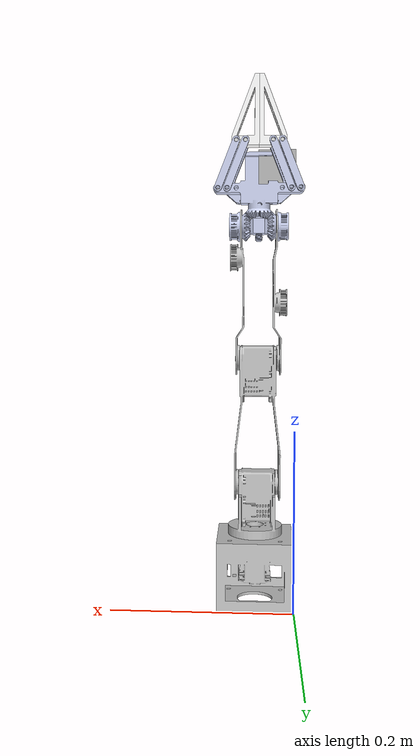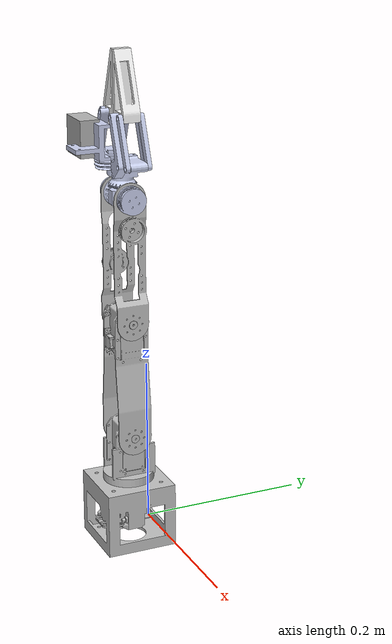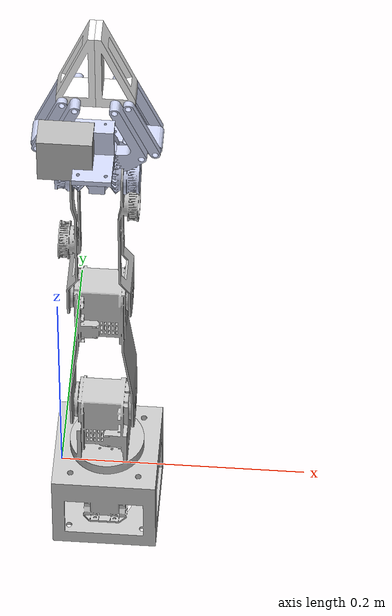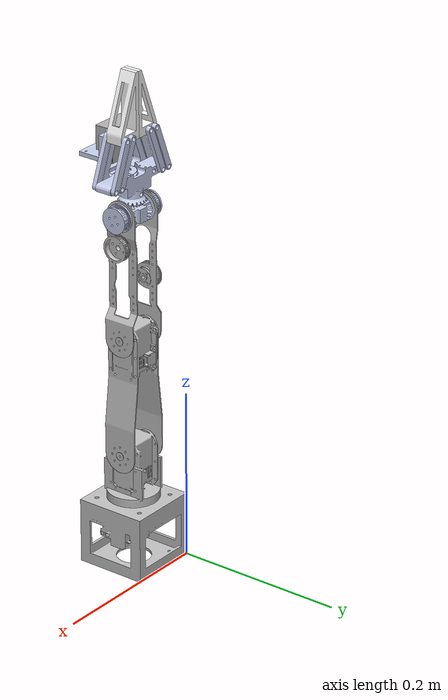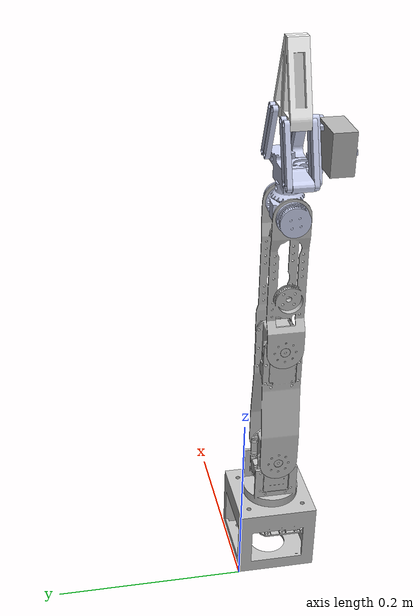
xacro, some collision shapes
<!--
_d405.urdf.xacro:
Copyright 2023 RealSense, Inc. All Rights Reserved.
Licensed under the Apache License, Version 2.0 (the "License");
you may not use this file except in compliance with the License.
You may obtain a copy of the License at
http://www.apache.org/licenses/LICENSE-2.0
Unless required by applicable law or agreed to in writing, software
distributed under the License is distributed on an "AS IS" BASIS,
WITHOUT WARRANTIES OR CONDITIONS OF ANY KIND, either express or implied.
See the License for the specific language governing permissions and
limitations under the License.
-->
<?xml version="1.0"?>
<robot xmlns:xacro="http://www.ros.org/wiki/xacro" name="arm_robot_description">
    <xacro:arg name="initial_positions_file" default="initial_positions.yaml" />
    <xacro:arg name="use_nominal_extrinsics" default="false"/>

    <!-- Import arm_robot_description urdf file -->
    <xacro:include filename="$(find arm_robot_description)/urdf/arm_robot_description.urdf" />
    <!-- Import depth camera -->
    <xacro:include filename="$(find arm_robot_description)/urdf/_d405.urdf.xacro" />

    <xacro:sensor_d405 parent="camera_link" use_nominal_extrinsics="$(arg use_nominal_extrinsics)">
    <origin xyz="0 0 0.00129" rpy="0 -1.5707963268 -1.5707963268"/>
    </xacro:sensor_d405>

    <xacro:include filename="arm_robot_description.ros2_control.xacro" />
    <!-- original -->
    <xacro:arm_robot_description_ros2_control name="arm_robot_description_ros2_control" initial_positions_file="$(arg initial_positions_file)"/> <!-- imitated from open_manipulator_x.urdf.xacro -->

</robot>

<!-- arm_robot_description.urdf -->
<robot
  name="arm_robot_description">
  <link
    name="base_link">
    <visual>
      <origin
        xyz="0 0 0"
        rpy="0 0 0" />
      <geometry>
        <mesh
          filename="package://arm_robot_description/meshes/base_link.STL" />
      </geometry>
      <material
        name="">
        <color
          rgba="0.752941176470588 0.752941176470588 0.752941176470588 1" />
      </material>
    </visual>
    <collision>
      <origin
        xyz="0 0 0"
        rpy="0 0 0" />
      <geometry>
        <mesh
          filename="package://arm_robot_description/meshes/base_link.STL" />
      </geometry>
    </collision>
  </link>
  <link
    name="shoulder_link">
    <inertial>
      <origin
        xyz="0.000963679642365663 0.0577904979483488 -9.50062831804183E-05"
        rpy="0 0 0" />
      <mass
        value="0.0937952908137171" />
      <inertia
        ixx="2.94163203677392E-05"
        ixy="-4.78216785521403E-07"
        ixz="-9.68291794152728E-08"
        iyy="2.60092518486733E-05"
        iyz="-1.13045243628439E-08"
        izz="3.10075174738564E-05" />
    </inertial>
    <visual>
      <origin
        xyz="0 0 0"
        rpy="0 0 0" />
      <geometry>
        <mesh
          filename="package://arm_robot_description/meshes/shoulder_link.STL" />
      </geometry>
      <material
        name="">
        <color
          rgba="0.752941176470588 0.752941176470588 0.752941176470588 1" />
      </material>
    </visual>
    <collision>
      <origin
        xyz="0 0 0"
        rpy="0 0 0" />
      <geometry>
        <mesh
          filename="package://arm_robot_description/meshes/shoulder_link.STL" />
      </geometry>
    </collision>
  </link>
  <joint
    name="shoulder_joint"
    type="revolute">
    <origin
      xyz="0.042 -0.042 0.052082"
      rpy="1.570796327 0 -3.1415926536" />
    <parent
      link="base_link" />
    <child
      link="shoulder_link" />
    <axis
      xyz="0 1 0" />
    <limit
      lower="-3.1415926536"
      upper="3.1415926536"
      effort="0"
      velocity="0" />
  </joint>
  <link
    name="upperarm_link">
    <inertial>
      <origin
        xyz="0.0393296521650432 -0.0955117843738581 3.5171956702662E-07"
        rpy="0 0 0" />
      <mass
        value="0.106266316809038" />
      <inertia
        ixx="9.43010109053496E-05"
        ixy="-5.069300878039E-07"
        ixz="4.25324654345257E-11"
        iyy="2.01302460392975E-05"
        iyz="1.88515951791571E-13"
        izz="9.21413861518418E-05" />
    </inertial>
    <visual>
      <origin
        xyz="0 0 0"
        rpy="0 0 0" />
      <geometry>
        <mesh
          filename="package://arm_robot_description/meshes/upperarm_link.STL" />
      </geometry>
      <material
        name="">
        <color
          rgba="0.752941176470588 0.752941176470588 0.752941176470588 1" />
      </material>
    </visual>
    <collision>
      <origin
        xyz="0 0 0"
        rpy="0 0 0" />
      <geometry>
        <mesh
          filename="package://arm_robot_description/meshes/upperarm_link.STL" />
      </geometry>
    </collision>
  </link>
  <joint
    name="upperarm_joint"
    type="revolute">
    <origin
      xyz="-0.036613 0.084019 0"
      rpy="3.1415926536 0 0" />
    <parent
      link="shoulder_link" />
    <child
      link="upperarm_link" />
    <axis
      xyz="1 0 0" />
    <limit
      lower="-1.570796327"
      upper="1.570796327"
      effort="0"
      velocity="0" />
  </joint>
  <link
    name="forearm_link">
    <inertial>
      <origin
        xyz="-0.00379914392129819 -0.0675895141224325 1.11022302462516E-16"
        rpy="0 0 0" />
      <mass
        value="0.0738289635729949" />
      <inertia
        ixx="0.000101606244132764"
        ixy="2.11583914183042E-22"
        ixz="-1.86726194029619E-12"
        iyy="8.93040327450558E-06"
        iyz="-3.01427046942224E-19"
        izz="9.41733072382026E-05" />
    </inertial>
    <visual>
      <origin
        xyz="0 0 0"
        rpy="0 0 0" />
      <geometry>
        <mesh
          filename="package://arm_robot_description/meshes/forearm_link.STL" />
      </geometry>
      <material
        name="">
        <color
          rgba="0.752941176470588 0.752941176470588 0.752941176470588 1" />
      </material>
    </visual>
    <collision>
      <origin
        xyz="0 0 0"
        rpy="0 0 0" />
      <geometry>
        <mesh
          filename="package://arm_robot_description/meshes/forearm_link.STL" />
      </geometry>
    </collision>
  </link>
  <joint
    name="forearm_joint"
    type="revolute">
    <origin
      xyz="0.035651 -0.14 0"
      rpy="3.1415926536 0 3.1415926536" />
    <parent
      link="upperarm_link" />
    <child
      link="forearm_link" />
    <axis
      xyz="1 0 0" />
    <limit
      lower="-1.570796327"
      upper="1.570796327"
      effort="0"
      velocity="0" />
  </joint>
  <link
    name="wrist_link">
    <inertial>
      <origin
        xyz="-5.9548301278578E-05 0.0309219607518911 -3.52055394473028E-05"
        rpy="0 0 0" />
      <mass
        value="0.0312687952088218" />
      <inertia
        ixx="2.36442877114977E-06"
        ixy="-2.65552878745857E-09"
        ixz="-2.24830540296741E-07"
        iyy="3.26245065540287E-06"
        iyz="4.49109404910189E-09"
        izz="2.53633915404046E-06" />
    </inertial>
    <visual>
      <origin
        xyz="0 0 0"
        rpy="0 0 0" />
      <geometry>
        <mesh
          filename="package://arm_robot_description/meshes/wrist_link.STL" />
      </geometry>
      <material
        name="">
        <color
          rgba="0.792156862745098 0.819607843137255 0.933333333333333 1" />
      </material>
    </visual>
    <collision>
      <origin
        xyz="0 0 0"
        rpy="0 0 0" />
      <geometry>
        <mesh
          filename="package://arm_robot_description/meshes/wrist_link.STL" />
      </geometry>
    </collision>
  </link>
  <joint
    name="wrist_joint"
    type="revolute">
    <origin
      xyz="-0.035049 -0.145 0"
      rpy="0 -0.96942 -1.570796327" />
    <parent
      link="forearm_link" />
    <child
      link="wrist_link" />
    <axis
      xyz="0 -1 0" />
    <limit
      lower="-1.6"
      upper="1.6"
      effort="0"
      velocity="0" />
  </joint>
  <link
    name="frame_link">
    <inertial>
      <origin
        xyz="0.00423615580807838 0.00251757352994463 0.037073257530931"
        rpy="0 0 0" />
      <mass
        value="0.0971603253782602" />
      <inertia
        ixx="3.61475773412502E-05"
        ixy="1.3650130640794E-05"
        ixz="7.26831148623548E-07"
        iyy="2.03809535466644E-05"
        iyz="4.18500158510254E-07"
        izz="4.68109199288427E-05" />
    </inertial>
    <visual>
      <origin
        xyz="0 0 0"
        rpy="0 0 0" />
      <geometry>
        <mesh
          filename="package://arm_robot_description/meshes/frame_link.STL" />
      </geometry>
      <material
        name="">
        <color
          rgba="0.792156862745098 0.819607843137255 0.933333333333333 1" />
      </material>
    </visual>
    <collision>
      <origin
        xyz="0 0 0"
        rpy="0 0 0" />
      <geometry>
        <mesh
          filename="package://arm_robot_description/meshes/frame_link.STL" />
      </geometry>
    </collision>
  </link>
  <joint
    name="frame_joint"
    type="revolute">
    <origin
      xyz="0.0036775 0.03125 -0.0053596"
      rpy="-2.8111 0.51206 -2.5307" />
    <parent
      link="wrist_link" />
    <child
      link="frame_link" />
    <axis
      xyz="0 0 1" />
    <limit
      lower="-3.1415926536"
      upper="3.1415926536"
      effort="0"
      velocity="0" />
  </joint>
  <link
    name="worm_link">
    <inertial>
      <origin
        xyz="0.000260518944933091 0.000117382605098179 0.00451004543272632"
        rpy="0 0 0" />
      <mass
        value="0.00449816970666781" />
      <inertia
        ixx="4.14594786131159E-07"
        ixy="1.40083855679959E-10"
        ixz="-2.46228289212281E-10"
        iyy="4.1416094521697E-07"
        iyz="-1.00268234450091E-09"
        izz="7.65193389522088E-07" />
    </inertial>
    <visual>
      <origin
        xyz="0 0 0"
        rpy="0 0 0" />
      <geometry>
        <mesh
          filename="package://arm_robot_description/meshes/worm_link.STL" />
      </geometry>
      <material
        name="">
        <color
          rgba="0.792156862745098 0.819607843137255 0.933333333333333 1" />
      </material>
    </visual>
    <collision>
      <origin
        xyz="0 0 0"
        rpy="0 0 0" />
      <geometry>
        <mesh
          filename="package://arm_robot_description/meshes/worm_link.STL" />
      </geometry>
    </collision>
  </link>
  <joint
    name="worm_joint"
    type="revolute">
    <origin
      xyz="0.01299 0.0075 0.038"
      rpy="3.1415926536 0 -3.0183" />
    <parent
      link="frame_link" />
    <child
      link="worm_link" />
    <axis
      xyz="0 0 1" />
    <limit
      lower="0"
      upper="3.1415926536"
      effort="0"
      velocity="0" />
  </joint>
  <link
    name="camera_link">
    <inertial>
      <origin
        xyz="-5.1064E-05 0.021054 0.0043102"
        rpy="0 0 0" />
      <mass
        value="0.06" />
      <inertia
        ixx="6.3369E-06"
        ixy="-1.7614E-10"
        ixz="-1.0223E-09"
        iyy="6.3143E-06"
        iyz="-2.0617E-09"
        izz="1.1586E-05" />
    </inertial>
  </link>
  <joint
    name="camera_joint"
    type="fixed">
    <origin
      xyz="0.028329 0.016933 0.06075"
      rpy="-1.5707963268 -1.5707963268 -1.0472" /> <!-- This reorients the camera AND pointcloud -->
    <parent
      link="frame_link" />
    <child
      link="camera_link" />
    <axis
      xyz="0 0 0" />
  </joint>
  <link
    name="left_inner_link">
    <inertial>
      <origin
        xyz="0.00295374681981073 -0.00172924903482494 -0.0202562653029812"
        rpy="0 0 0" />
      <mass
        value="0.00921636410970939" />
      <inertia
        ixx="3.15977166254403E-06"
        ixy="8.94327155107839E-11"
        ixz="-4.83078423739066E-07"
        iyy="3.37677241931955E-06"
        iyz="1.24222051728893E-10"
        izz="3.4311273454431E-07" />
    </inertial>
    <visual>
      <origin
        xyz="0 0 0"
        rpy="0 0 0" />
      <geometry>
        <mesh
          filename="package://arm_robot_description/meshes/left_inner_link.STL" />
      </geometry>
      <material
        name="">
        <color
          rgba="0.792156862745098 0.819607843137255 0.933333333333333 1" />
      </material>
    </visual>
    <collision>
      <origin
        xyz="0 0 0"
        rpy="0 0 0" />
      <geometry>
        <mesh
          filename="package://arm_robot_description/meshes/left_inner_link.STL" />
      </geometry>
    </collision>
  </link>
  <joint
    name="left_inner_joint"
    type="revolute">
    <origin
      xyz="0.02616 -0.025311 0.035"
      rpy="3.1415926536 0.37217 2.0944" />
    <parent
      link="frame_link" />
    <child
      link="left_inner_link" />
    <axis
      xyz="0 1 0" />
    <limit
      lower="0"
      upper="0.6"
      effort="0"
      velocity="0" />
    <mimic
      joint="worm_joint"
      multiplier="0.190991564"
      offset="0" />
  </joint>
  <link
    name="left_finger_link">
    <inertial>
      <origin
        xyz="0.00511565604680594 0.0100000000000003 -0.0244249931550103"
        rpy="0 0 0" />
      <mass
        value="0.0160596004014874" />
      <inertia
        ixx="9.38451157380704E-06"
        ixy="-3.43741641172726E-21"
        ixz="1.54039618799638E-06"
        iyy="1.0073020861505E-05"
        iyz="8.98402572391069E-21"
        izz="1.87995862434743E-06" />
    </inertial>
    <visual>
      <origin
        xyz="0 0 0"
        rpy="0 0 0" />
      <geometry>
        <mesh
          filename="package://arm_robot_description/meshes/left_finger_link.STL" />
      </geometry>
      <material
        name="">
        <color
          rgba="1 1 1 1" />
      </material>
    </visual>
    <collision>
      <origin
        xyz="0 0 0"
        rpy="0 0 0" />
      <geometry>
        <mesh
          filename="package://arm_robot_description/meshes/left_finger_link.STL" />
      </geometry>
    </collision>
  </link>
  <joint
    name="left_finger_joint"
    type="revolute">
    <origin
      xyz="0 -0.02 -0.055"
      rpy="0 0.37217 0" />
    <parent
      link="left_inner_link" />
    <child
      link="left_finger_link" />
    <axis
      xyz="0 1 0" />
    <limit
      lower="-0.6"
      upper="0"
      effort="0"
      velocity="0" />
    <mimic
      joint="left_inner_joint"
      multiplier="-1"
      offset="0" />
  </joint>
  <link
    name="right_inner_link">
    <inertial>
      <origin
        xyz="0.00295374681981056 0.0117276610278346 -0.0202562653029817"
        rpy="0 0 0" />
      <mass
        value="0.00921636410970938" />
      <inertia
        ixx="3.15977166254403E-06"
        ixy="8.94327155090331E-11"
        ixz="-4.83078423739054E-07"
        iyy="3.37677241931954E-06"
        iyz="1.24222051731463E-10"
        izz="3.43112734544309E-07" />
    </inertial>
    <visual>
      <origin
        xyz="0 0 0"
        rpy="0 0 0" />
      <geometry>
        <mesh
          filename="package://arm_robot_description/meshes/right_inner_link.STL" />
      </geometry>
      <material
        name="">
        <color
          rgba="0.792156862745098 0.819607843137255 0.933333333333333 1" />
      </material>
    </visual>
    <collision>
      <origin
        xyz="0 0 0"
        rpy="0 0 0" />
      <geometry>
        <mesh
          filename="package://arm_robot_description/meshes/right_inner_link.STL" />
      </geometry>
    </collision>
  </link>
  <joint
    name="right_inner_joint"
    type="revolute">
    <origin
      xyz="-0.00017949 0.040311 0.035"
      rpy="3.1415926536 0.37217 -1.0472" />
    <parent
      link="frame_link" />
    <child
      link="right_inner_link" />
    <axis
      xyz="0 -1 0" />
    <limit
      lower="-0.6"
      upper="0"
      effort="0"
      velocity="0" />
    <mimic
      joint="worm_joint"
      multiplier="-0.190991564"
      offset="0" />
  </joint>
  <link
    name="right_finger_link">
    <inertial>
      <origin
        xyz="0.00511565604680823 0.00999999999999974 -0.0244249931550099"
        rpy="0 0 0" />
      <mass
        value="0.0160596004014874" />
      <inertia
        ixx="9.38451157380674E-06"
        ixy="-3.65454764450331E-21"
        ixz="1.54039618799715E-06"
        iyy="1.0073020861505E-05"
        iyz="7.47838052557991E-21"
        izz="1.87995862434775E-06" />
    </inertial>
    <visual>
      <origin
        xyz="0 0 0"
        rpy="0 0 0" />
      <geometry>
        <mesh
          filename="package://arm_robot_description/meshes/right_finger_link.STL" />
      </geometry>
      <material
        name="">
        <color
          rgba="1 1 1 1" />
      </material>
    </visual>
    <collision>
      <origin
        xyz="0 0 0"
        rpy="0 0 0" />
      <geometry>
        <mesh
          filename="package://arm_robot_description/meshes/right_finger_link.STL" />
      </geometry>
    </collision>
  </link>
  <joint
    name="right_finger_joint"
    type="revolute">
    <origin
      xyz="0 0.01 -0.055"
      rpy="0 0.37217 0" />
    <parent
      link="right_inner_link" />
    <child
      link="right_finger_link" />
    <axis
      xyz="0 1 0" />
    <limit
      lower="-0.6"
      upper="0"
      effort="0"
      velocity="0" />
    <mimic
      joint="right_inner_joint"
      multiplier="1"
      offset="0" />
  </joint>
  <link
    name="left_outer_link">
    <inertial>
      <origin
        xyz="1.11022302462516E-16 -0.00999999999999943 -0.0274999999999999"
        rpy="0 0 0" />
      <mass
        value="0.00450995574287564" />
      <inertia
        ixx="1.25004679866384E-06"
        ixy="8.80640842801115E-24"
        ixz="-3.18299099710405E-21"
        iyy="1.26551475118266E-06"
        iyz="4.5157491829455E-22"
        izz="3.42594347808008E-08" />
    </inertial>
    <visual>
      <origin
        xyz="0 0 0"
        rpy="0 0 0" />
      <geometry>
        <mesh
          filename="package://arm_robot_description/meshes/left_outer_link.STL" />
      </geometry>
      <material
        name="">
        <color
          rgba="0.792156862745098 0.819607843137255 0.933333333333333 1" />
      </material>
    </visual>
    <collision>
      <origin
        xyz="0 0 0"
        rpy="0 0 0" />
      <geometry>
        <mesh
          filename="package://arm_robot_description/meshes/left_outer_link.STL" />
      </geometry>
    </collision>
  </link>
  <joint
    name="left_outer_joint"
    type="revolute">
    <origin
      xyz="0.03116 -0.033971 0.035"
      rpy="3.1415926536 0.37217 2.0944" />
    <parent
      link="frame_link" />
    <child
      link="left_outer_link" />
    <axis
      xyz="0 1 0" />
    <limit
      lower="0"
      upper="0.6"
      effort="0"
      velocity="0" />
    <mimic
      joint="left_inner_joint"
      multiplier="1"
      offset="0" />
  </joint>
  <link
    name="right_outer_link">
    <inertial>
      <origin
        xyz="2.77555756156289E-17 0.015 -0.0275"
        rpy="0 0 0" />
      <mass
        value="0.00450995574287564" />
      <inertia
        ixx="1.25004679866384E-06"
        ixy="-8.75366721974071E-24"
        ixz="-1.1059404789834E-21"
        iyy="1.26551475118266E-06"
        iyz="-5.0099741919037E-22"
        izz="3.42594347808009E-08" />
    </inertial>
    <visual>
      <origin
        xyz="0 0 0"
        rpy="0 0 0" />
      <geometry>
        <mesh
          filename="package://arm_robot_description/meshes/right_outer_link.STL" />
      </geometry>
      <material
        name="">
        <color
          rgba="0.792156862745098 0.819607843137255 0.933333333333333 1" />
      </material>
    </visual>
    <collision>
      <origin
        xyz="0 0 0"
        rpy="0 0 0" />
      <geometry>
        <mesh
          filename="package://arm_robot_description/meshes/right_outer_link.STL" />
      </geometry>
    </collision>
  </link>
  <joint
    name="right_outer_joint"
    type="revolute">
    <origin
      xyz="-0.0095096 0.046471 0.035"
      rpy="3.1415926536 0.37217 -1.0472" />
    <parent
      link="frame_link" />
    <child
      link="right_outer_link" />
    <axis
      xyz="0 -1 0" />
    <limit
      lower="-0.6"
      upper="0"
      effort="0"
      velocity="0" />
    <mimic
      joint="right_inner_joint"
      multiplier="1"
      offset="0" />
  </joint>
</robot>

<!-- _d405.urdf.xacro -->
<!--
This is the URDF model for the RealSense 405 camera, in its
aluminum peripherial evaluation case.
-->

<robot name="sensor_d405" xmlns:xacro="http://ros.org/wiki/xacro">
  <!-- Includes -->
  <xacro:include filename="$(find arm_robot_description)/urdf/_materials.urdf.xacro" />
  <xacro:include filename="$(find arm_robot_description)/urdf/_usb_plug.urdf.xacro" />

  <xacro:macro name="sensor_d405" params="parent *origin name:=depcamera use_nominal_extrinsics:=false">
    <xacro:arg name="add_plug" default="false" />
    <xacro:property name="M_PI" value="3.1415926535897931" />

    <!-- The following values are approximate, and the camera node
     publishing TF values with actual calibrated camera extrinsic values -->
    <xacro:property name="d405_cam_depth_to_infra1_offset" value="0.0"/>
    <xacro:property name="d405_cam_depth_to_infra2_offset" value="-0.018"/>
    <xacro:property name="d405_cam_depth_to_color_offset" value="0.0"/>

    <!-- The following values model the aluminum peripherial case for the
  	d405 camera, with the camera joint represented by the actual
  	peripherial camera tripod mount -->
    <xacro:property name="d405_cam_width" value="0.042"/>
    <xacro:property name="d405_cam_height" value="0.042"/>
    <xacro:property name="d405_cam_depth" value="0.023"/>
    <xacro:property name="d405_cam_mount_from_center_offset" value="0.01465"/>
    <!-- glass cover is 0.1 mm inwards from front aluminium plate -->
    <xacro:property name="d405_glass_to_front" value="0.1e-3"/>
    <!-- see datasheet Revision 017, Table. 4-16 page 97 -->
    <xacro:property name="d405_zero_depth_to_glass" value="3.7e-3"/>
    <!-- convenience precomputation to avoid clutter-->
    <xacro:property name="d405_mesh_x_offset" value="${d405_cam_mount_from_center_offset-d405_glass_to_front-d405_zero_depth_to_glass}"/>

    <!-- The following offset is relative to the physical d405 camera peripherial
  	camera tripod mount -->
    <xacro:property name="d405_cam_depth_px" value="${d405_cam_mount_from_center_offset}"/>
    <xacro:property name="d405_cam_depth_py" value="0.009"/>
    <xacro:property name="d405_cam_depth_pz" value="${d405_cam_height/2}"/>

    <!-- camera body, with origin at bottom screw mount -->
    <joint name="${name}_joint" type="fixed">
      <xacro:insert_block name="origin" />
      <parent link="${parent}"/>
      <child link="${name}_bottom_screw_frame" />
    </joint>
    <link name="${name}_bottom_screw_frame"/>

    <joint name="${name}_link_joint" type="fixed">
      <origin xyz="${d405_mesh_x_offset} ${d405_cam_depth_py} ${d405_cam_depth_pz}" rpy="0 0 0"/>
      <parent link="${name}_bottom_screw_frame"/>
      <child link="${name}_link" />
    </joint>

    <link name="${name}_link">
      <visual>
        <!-- the mesh origin is at front plate in between the two infrared camera axes -->
        <origin xyz="${d405_zero_depth_to_glass + d405_glass_to_front} ${-d405_cam_depth_py} 0" rpy="${M_PI/2} 0 ${M_PI/2}"/>
        <geometry>
	        <mesh filename="package://arm_robot_description/meshes/d405.stl" scale="0.001 0.001 0.001" />
        </geometry>
        <material name="aluminum"/>
      </visual>
      <collision>
        <origin xyz="${d405_zero_depth_to_glass-d405_cam_depth/2} ${-d405_cam_depth_py} 0" rpy="0 0 0"/>
        <geometry>
          <box size="${d405_cam_depth} ${d405_cam_width} ${d405_cam_height}"/>
        </geometry>
      </collision>
      <inertial>
        <!-- The following are not reliable values, and should not be used for modeling -->
        <mass value="0.072" />
        <origin xyz="0 0 0" />
        <inertia ixx="0.003881243" ixy="0.0" ixz="0.0" iyy="0.000498940" iyz="0.0" izz="0.003879257" />
      </inertial>
    </link>

    <!-- Use the nominal extrinsics between camera frames if the calibrated extrinsics aren't being published. e.g. running the device in simulation  -->
    <xacro:if value="${use_nominal_extrinsics}">
      <!-- camera depth joints and links -->
      <joint name="${name}_depth_joint" type="fixed">
        <origin xyz="0 0 0" rpy="0 0 0"/>
        <parent link="${name}_link"/>
        <child link="${name}_depth_frame" />
      </joint>
      <link name="${name}_depth_frame"/>

      <joint name="${name}_depth_optical_joint" type="fixed">
        <origin xyz="0 0 0" rpy="${-M_PI/2} 0 ${-M_PI/2}" />
        <parent link="${name}_depth_frame" />
        <child link="${name}_depth_optical_frame" />
      </joint>
      <link name="${name}_depth_optical_frame"/>

      <!-- camera left IR joints and links -->
      <joint name="${name}_infra1_joint" type="fixed">
        <origin xyz="0 ${d405_cam_depth_to_infra1_offset} 0" rpy="0 0 0" />
        <parent link="${name}_link" />
        <child link="${name}_infra1_frame" />
      </joint>
      <link name="${name}_infra1_frame"/>

      <joint name="${name}_infra1_optical_joint" type="fixed">
        <origin xyz="0 0 0" rpy="${-M_PI/2} 0 ${-M_PI/2}" />
        <parent link="${name}_infra1_frame" />
        <child link="${name}_infra1_optical_frame" />
      </joint>
      <link name="${name}_infra1_optical_frame"/>

      <!-- camera right IR joints and links -->
      <joint name="${name}_infra2_joint" type="fixed">
        <origin xyz="0 ${d405_cam_depth_to_infra2_offset} 0" rpy="0 0 0" />
        <parent link="${name}_link" />
        <child link="${name}_infra2_frame" />
      </joint>
      <link name="${name}_infra2_frame"/>

      <joint name="${name}_infra2_optical_joint" type="fixed">
        <origin xyz="0 0 0" rpy="${-M_PI/2} 0 ${-M_PI/2}" />
        <parent link="${name}_infra2_frame" />
        <child link="${name}_infra2_optical_frame" />
      </joint>
      <link name="${name}_infra2_optical_frame"/>

      <!-- camera color joints and links -->
      <joint name="${name}_color_joint" type="fixed">
        <origin xyz="0 ${d405_cam_depth_to_color_offset} 0" rpy="0 0 0" />
        <parent link="${name}_link" />
        <child link="${name}_color_frame" />
      </joint>
      <link name="${name}_color_frame"/>

      <joint name="${name}_color_optical_joint" type="fixed">
        <origin xyz="0 0 0" rpy="${-M_PI/2} 0 ${-M_PI/2}" />
        <parent link="${name}_color_frame" />
        <child link="${name}_color_optical_frame" />
      </joint>
      <link name="${name}_color_optical_frame"/>
    </xacro:if>

    <xacro:if value="$(arg add_plug)">
      <xacro:usb_plug parent="${name}_link" name="${name}_usb_plug">
        <origin xyz="${-0.00153-d405_mesh_x_offset} ${d405_cam_width/2-d405_cam_depth_py} 0" rpy="${M_PI} 0 0"/>
      </xacro:usb_plug>
    </xacro:if>
  </xacro:macro>
</robot>
